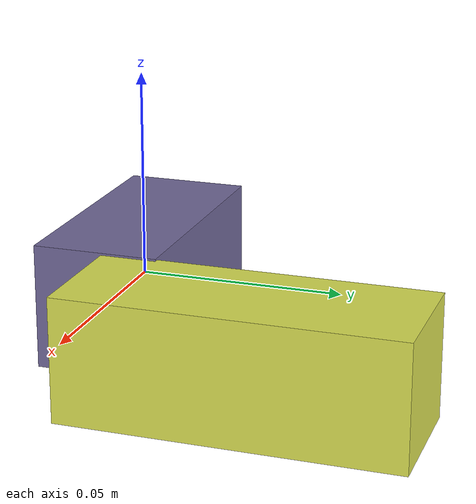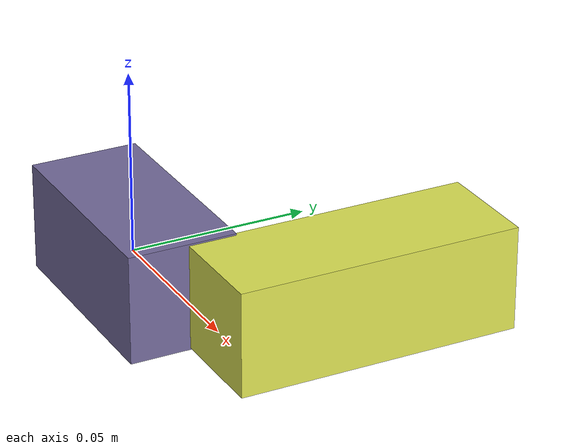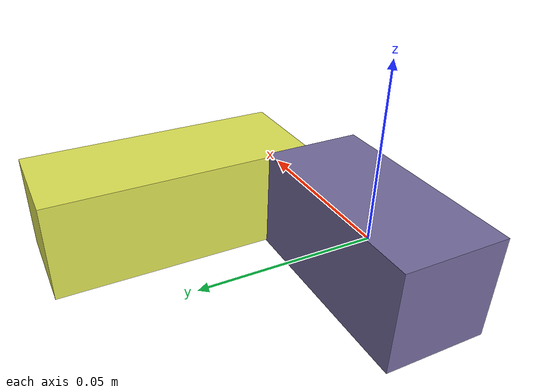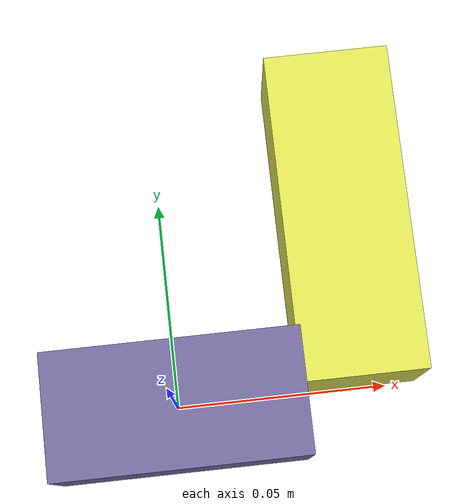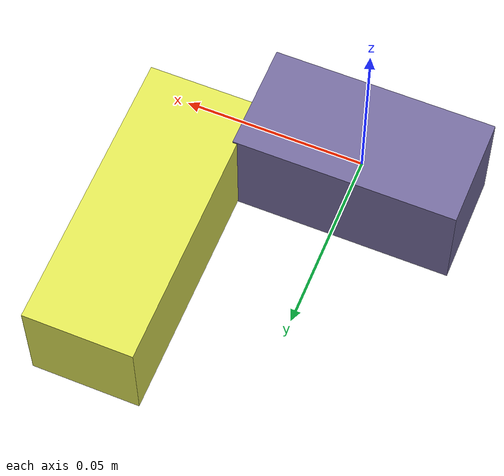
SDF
<sdf version="1.4"><world name="default"><model name="object0"><link name="link1"><pose>0 0 0 0 0 0</pose><inertial><pose>0 0 0 0 0 0</pose><mass>0.032933074408955584</mass><inertia><ixx>4.939961161343337e-06</ixx><ixy>0</ixy><iyy>1.267768440404123e-05</iyy><ixz>0</ixz><iyz>0</iyz><izz>1.267768440404123e-05</izz></inertia></inertial><visual name="link1_visual"><pose>0 0  0 0 0 0</pose><geometry><box><size>0.06098717483139923 0.03 0.03</size></box></geometry><material><diffuse>0.4516458701678777 0.4171553874141266 0.6104831125525834 1</diffuse></material></visual><collision><pose>0 0  0 0 0 0</pose><geometry><box><size>0.06098717483139923 0.03 0.03</size></box></geometry></collision></link><link name="link2"><pose>0.044326097475127446 0.04107457501308197 0 0 0 0</pose><inertial><pose>0 0 0 0 0 0</pose><mass>0.042525309870811004</mass><inertia><ixx>2.495758300045541e-05</ixx><ixy>0</ixy><iyy>6.169713707090163e-06</iyy><ixz>0</ixz><iyz>0</iyz><izz>2.5166665773986898e-05</izz></inertia></inertial><visual name="link2_visual"><pose>0 0  0 0 0 0</pose><geometry><box><size>0.03 0.07875057383483519 0.028999999999999998</size></box></geometry><material><diffuse>0.8670440772615982 0.8902543227125677 0.3275885343859766 1</diffuse></material></visual><collision><pose>0 0  0 0 0 0</pose><geometry><box><size>0.03 0.07875057383483519 0.028999999999999998</size></box></geometry></collision></link><joint name="link_joint_0" type="fixed"><parent>link1</parent><child>link2</child><pose>0 0 0 0 0 0</pose><axis><xyz>0 0 1</xyz></axis></joint></model></world></sdf>
